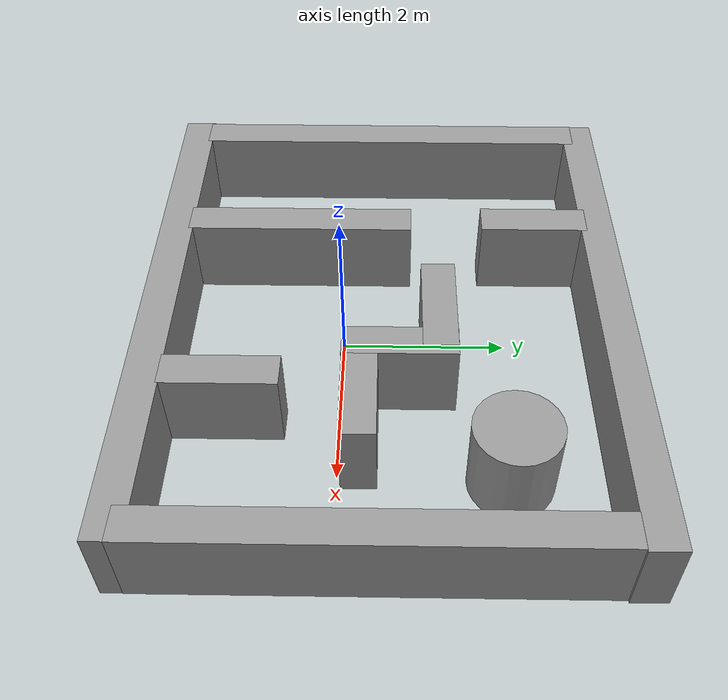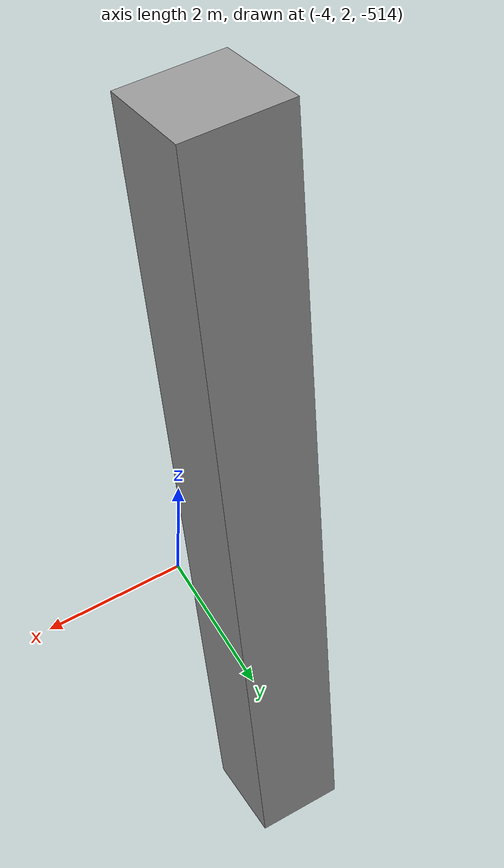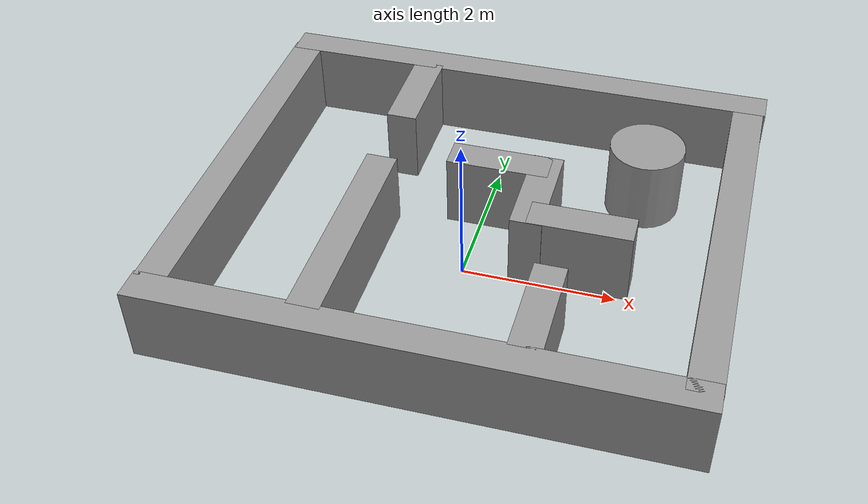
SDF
<sdf version="1.6">
 <world name="default">
  <light name="sun" type="directional">
   <pose>0 0 10 0 -0 0</pose>
   <diffuse>0.8 0.8 0.8 1</diffuse>
   <specular>0.2 0.2 0.2 1</specular>
   <attenuation>
    <range>1000</range>
    <constant>0.9</constant>
    <linear>0.01</linear>
    <quadratic>0.001</quadratic>
   </attenuation>
   <direction>-0.5 0.1 -0.9</direction>
  </light>
  <model name="ground_plane">
   <static>1</static>
   <link name="link">
    <collision name="collision">
     <geometry><plane><normal>0 0 1</normal><size>100 100</size></plane></geometry>
     <surface>
      <contact><collide_bitmask>65535</collide_bitmask></contact>
      <friction><ode><mu>100</mu><mu2>50</mu2></ode></friction>
     </surface>
    </collision>
    <visual name="visual">
     <cast_shadows>0</cast_shadows>
     <geometry><plane><normal>0 0 1</normal><size>100 100</size></plane></geometry>
     <material>
      <script><uri>file://media/materials/scripts/gazebo.material</uri><name>Gazebo/Grey</name></script>
     </material>
    </visual>
   </link>
  </model>
  <gravity>0 0 -9.8</gravity>
  <magnetic_field>6e-06 2.3e-05 -4.2e-05</magnetic_field>
  <atmosphere type="adiabatic"/>
  <physics name="default_physics" default="0" type="ode">
   <max_step_size>0.001</max_step_size>
   <real_time_factor>1</real_time_factor>
   <real_time_update_rate>1000</real_time_update_rate>
  </physics>
  <scene><ambient>0.4 0.4 0.4 1</ambient><background>0.7 0.7 0.7 1</background><shadows>1</shadows></scene>
  <audio><device>default</device></audio>
  <spherical_coordinates>
   <surface_model>EARTH_WGS84</surface_model>
   <latitude_deg>0</latitude_deg>
   <longitude_deg>0</longitude_deg>
   <elevation>0</elevation>
   <heading_deg>0</heading_deg>
  </spherical_coordinates>
  <model name="unit_box">
   <pose>-3.52073 4.24588 -509.298 -1.31718 -0.003925 -0.001037</pose>
   <link name="unit_box::link">
    <inertial>
     <mass>1</mass>
     <inertia>
      <ixx>0.166667</ixx>
      <ixy>0</ixy>
      <ixz>0</ixz>
      <iyy>0.166667</iyy>
      <iyz>0</iyz>
      <izz>0.166667</izz>
     </inertia>
    </inertial>
    <collision name="collision"><geometry><box><size>1 9.09514 1</size></box></geometry></collision>
    <visual name="visual">
     <geometry><box><size>1 9.09514 1</size></box></geometry>
     <material>
      <script><name>Gazebo/Grey</name><uri>file://media/materials/scripts/gazebo.material</uri></script>
     </material>
    </visual>
    <kinematic>1</kinematic>
   </link>
  </model>
  <model name="unit_box_0_clone_0">
   <pose>3.23922 0.464809 0.5 0 -0 0</pose>
   <link name="unit_box_0::link">
    <inertial>
     <mass>1</mass>
     <inertia>
      <ixx>0.166667</ixx>
      <ixy>0</ixy>
      <ixz>0</ixz>
      <iyy>0.166667</iyy>
      <iyz>0</iyz>
      <izz>0.166667</izz>
     </inertia>
    </inertial>
    <collision name="collision"><geometry><box><size>0.411556 5.14307 1</size></box></geometry></collision>
    <visual name="visual">
     <geometry><box><size>0.411556 5.14307 1</size></box></geometry>
     <material>
      <script><name>Gazebo/Grey</name><uri>file://media/materials/scripts/gazebo.material</uri></script>
     </material>
    </visual>
    <kinematic>1</kinematic>
   </link>
  </model>
  <light name="user_point_light_0" type="point">
   <pose>0.192355 0.075183 1 0 -0 0</pose>
   <diffuse>0.5 0.5 0.5 1</diffuse>
   <specular>0.1 0.1 0.1 1</specular>
   <attenuation>
    <range>20</range>
    <constant>0.5</constant>
    <linear>0.01</linear>
    <quadratic>0.001</quadratic>
   </attenuation>
   <cast_shadows>0</cast_shadows>
   <direction>0 0 -1</direction>
  </light>
  <light name="user_directional_light_0" type="directional">
   <pose>0.321192 -0.035109 1 0 -0 0</pose>
   <diffuse>0.5 0.5 0.5 1</diffuse>
   <specular>0.1 0.1 0.1 1</specular>
   <direction>0.1 0.1 -0.9</direction>
   <attenuation>
    <range>20</range>
    <constant>0.5</constant>
    <linear>0.01</linear>
    <quadratic>0.001</quadratic>
   </attenuation>
  </light>
  <model name="unit_box_0_clone_0_clone">
   <pose>-3.20431 0.53688 0.5 0 -0 0</pose>
   <link name="unit_box_0::link">
    <inertial>
     <mass>1</mass>
     <inertia>
      <ixx>0.166667</ixx>
      <ixy>0</ixy>
      <ixz>0</ixz>
      <iyy>0.166667</iyy>
      <iyz>0</iyz>
      <izz>0.166667</izz>
     </inertia>
    </inertial>
    <collision name="collision"><geometry><box><size>0.411556 5.14307 1</size></box></geometry></collision>
    <visual name="visual">
     <geometry><box><size>0.411556 5.14307 1</size></box></geometry>
     <material>
      <script><name>Gazebo/Grey</name><uri>file://media/materials/scripts/gazebo.material</uri></script>
     </material>
    </visual>
    <kinematic>1</kinematic>
   </link>
  </model>
  <model name="unit_box_0_clone_0_clone_0">
   <pose>0.036458 3.21199 0.5 0 0 -1.56275</pose>
   <link name="unit_box_0::link">
    <inertial>
     <mass>1</mass>
     <inertia>
      <ixx>0.166667</ixx>
      <ixy>0</ixy>
      <ixz>0</ixz>
      <iyy>0.166667</iyy>
      <iyz>0</iyz>
      <izz>0.166667</izz>
     </inertia>
    </inertial>
    <collision name="collision"><geometry><box><size>0.411556 6.86626 1</size></box></geometry></collision>
    <visual name="visual">
     <geometry><box><size>0.411556 6.86626 1</size></box></geometry>
     <material>
      <script><name>Gazebo/Grey</name><uri>file://media/materials/scripts/gazebo.material</uri></script>
     </material>
    </visual>
    <kinematic>1</kinematic>
   </link>
  </model>
  <model name="unit_box_0_clone_0_clone_0_clone">
   <pose>0.007025 -2.16256 0.5 0 0 -1.56275</pose>
   <link name="unit_box_0::link">
    <inertial>
     <mass>1</mass>
     <inertia>
      <ixx>0.166667</ixx>
      <ixy>0</ixy>
      <ixz>0</ixz>
      <iyy>0.166667</iyy>
      <iyz>0</iyz>
      <izz>0.166667</izz>
     </inertia>
    </inertial>
    <collision name="collision"><geometry><box><size>0.411556 6.86625 1</size></box></geometry></collision>
    <visual name="visual">
     <geometry><box><size>0.411556 6.86625 1</size></box></geometry>
     <material>
      <script><name>Gazebo/Grey</name><uri>file://media/materials/scripts/gazebo.material</uri></script>
     </material>
    </visual>
    <kinematic>1</kinematic>
   </link>
  </model>
  <model name="unit_box_0_clone_0_clone_clone">
   <pose>-1.31334 -0.596253 0.5 0 -0 0</pose>
   <link name="unit_box_0::link">
    <inertial>
     <mass>1</mass>
     <inertia>
      <ixx>0.166667</ixx>
      <ixy>0</ixy>
      <ixz>0</ixz>
      <iyy>0.166667</iyy>
      <iyz>0</iyz>
      <izz>0.166667</izz>
     </inertia>
    </inertial>
    <collision name="collision"><geometry><box><size>0.411556 2.84505 1</size></box></geometry></collision>
    <visual name="visual">
     <geometry><box><size>0.411556 2.84505 1</size></box></geometry>
     <material>
      <script><name>Gazebo/Grey</name><uri>file://media/materials/scripts/gazebo.material</uri></script>
     </material>
    </visual>
    <kinematic>1</kinematic>
   </link>
  </model>
  <model name="unit_box_0_clone_0_clone_clone_clone">
   <pose>-1.33997 2.39946 0.5 0 -0 0</pose>
   <link name="unit_box_0::link">
    <inertial>
     <mass>1</mass>
     <inertia>
      <ixx>0.166667</ixx>
      <ixy>0</ixy>
      <ixz>0</ixz>
      <iyy>0.166667</iyy>
      <iyz>0</iyz>
      <izz>0.166667</izz>
     </inertia>
    </inertial>
    <collision name="collision"><geometry><box><size>0.411556 1.34192 1</size></box></geometry></collision>
    <visual name="visual">
     <geometry><box><size>0.411556 1.34192 1</size></box></geometry>
     <material>
      <script><name>Gazebo/Grey</name><uri>file://media/materials/scripts/gazebo.material</uri></script>
     </material>
    </visual>
    <kinematic>1</kinematic>
   </link>
  </model>
  <model name="unit_box_0_clone_0_clone_clone_clone_clone">
   <pose>1.27068 -1.30294 0.5 0 -0 0</pose>
   <link name="unit_box_0::link">
    <inertial>
     <mass>1</mass>
     <inertia>
      <ixx>0.166667</ixx>
      <ixy>0</ixy>
      <ixz>0</ixz>
      <iyy>0.166667</iyy>
      <iyz>0</iyz>
      <izz>0.166667</izz>
     </inertia>
    </inertial>
    <collision name="collision"><geometry><box><size>0.411556 1.34192 1</size></box></geometry></collision>
    <visual name="visual">
     <geometry><box><size>0.411556 1.34192 1</size></box></geometry>
     <material>
      <script><name>Gazebo/Grey</name><uri>file://media/materials/scripts/gazebo.material</uri></script>
     </material>
    </visual>
    <kinematic>1</kinematic>
   </link>
  </model>
  <model name="unit_box_0_clone_0_clone_clone_clone_clone_0">
   <pose>1.47009 0.243973 0.5 0 0 -1.56249</pose>
   <link name="unit_box_0::link">
    <inertial>
     <mass>1</mass>
     <inertia>
      <ixx>0.166667</ixx>
      <ixy>0</ixy>
      <ixz>0</ixz>
      <iyy>0.166667</iyy>
      <iyz>0</iyz>
      <izz>0.166667</izz>
     </inertia>
    </inertial>
    <collision name="collision"><geometry><box><size>0.411556 1.34192 1</size></box></geometry></collision>
    <visual name="visual">
     <geometry><box><size>0.411556 1.34192 1</size></box></geometry>
     <material>
      <script><name>Gazebo/Grey</name><uri>file://media/materials/scripts/gazebo.material</uri></script>
     </material>
    </visual>
    <kinematic>1</kinematic>
   </link>
  </model>
  <model name="unit_box_0_clone_0_clone_clone_clone_clone_clone">
   <pose>0.804126 0.697072 0.5 0 -0 0</pose>
   <link name="unit_box_0::link">
    <inertial>
     <mass>1</mass>
     <inertia>
      <ixx>0.166667</ixx>
      <ixy>0</ixy>
      <ixz>0</ixz>
      <iyy>0.166667</iyy>
      <iyz>0</iyz>
      <izz>0.166667</izz>
     </inertia>
    </inertial>
    <collision name="collision"><geometry><box><size>0.411556 1.34192 1</size></box></geometry></collision>
    <visual name="visual">
     <geometry><box><size>0.411556 1.34192 1</size></box></geometry>
     <material>
      <script><name>Gazebo/Grey</name><uri>file://media/materials/scripts/gazebo.material</uri></script>
     </material>
    </visual>
    <kinematic>1</kinematic>
   </link>
  </model>
  <model name="unit_box_0_clone_0_clone_clone_clone_clone_0_clone">
   <pose>0.20002 1.15608 0.5 0 0 -1.56249</pose>
   <link name="unit_box_0::link">
    <inertial>
     <mass>1</mass>
     <inertia>
      <ixx>0.166667</ixx>
      <ixy>0</ixy>
      <ixz>0</ixz>
      <iyy>0.166667</iyy>
      <iyz>0</iyz>
      <izz>0.166667</izz>
     </inertia>
    </inertial>
    <collision name="collision"><geometry><box><size>0.411556 1.34192 1</size></box></geometry></collision>
    <visual name="visual">
     <geometry><box><size>0.411556 1.34192 1</size></box></geometry>
     <material>
      <script><name>Gazebo/Grey</name><uri>file://media/materials/scripts/gazebo.material</uri></script>
     </material>
    </visual>
    <kinematic>1</kinematic>
   </link>
  </model>
  <model name="unit_cylinder">
   <pose>2.02331 1.94428 0.499997 3e-06 4e-06 -0</pose>
   <link name="link">
    <inertial>
     <mass>1</mass>
     <inertia><ixx>0.145833</ixx><ixy>0</ixy><ixz>0</ixz><iyy>0.145833</iyy><iyz>0</iyz><izz>0.125</izz></inertia>
    </inertial>
    <collision name="collision">
     <geometry><cylinder><radius>0.5</radius><length>1</length></cylinder></geometry>
    </collision>
    <visual name="visual">
     <geometry><cylinder><radius>0.5</radius><length>1</length></cylinder></geometry>
     <material>
      <script><name>Gazebo/Grey</name><uri>file://media/materials/scripts/gazebo.material</uri></script>
     </material>
    </visual>
   </link>
  </model>
 </world>
</sdf>
